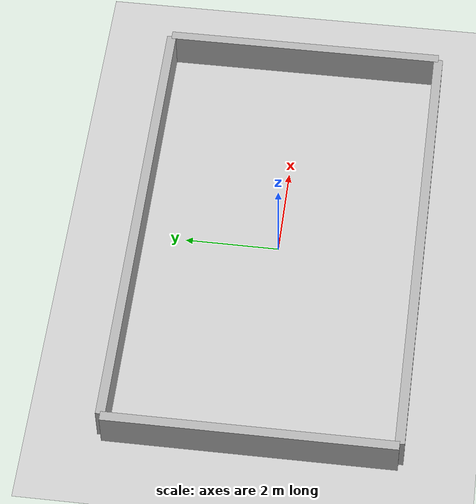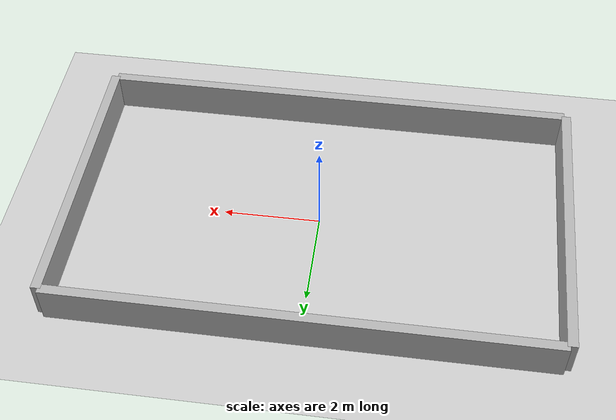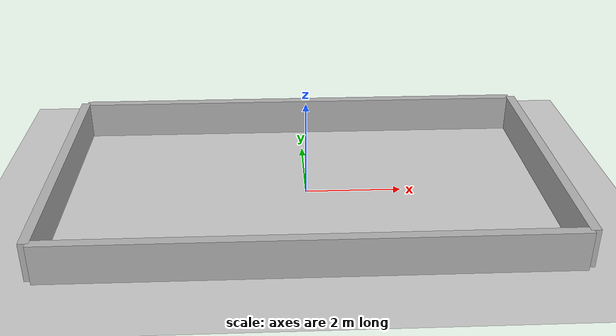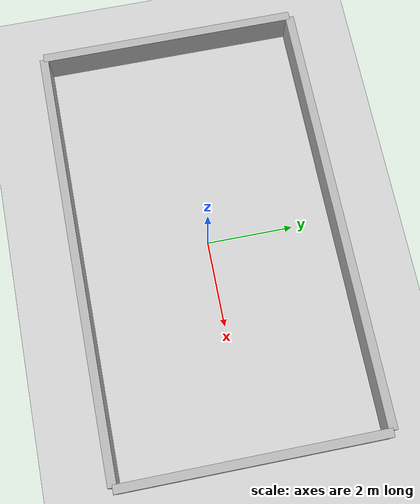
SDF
<sdf version="1.9">
 <world name="empty">
  <physics name="1ms" type="ignored">
   <max_step_size>0.001</max_step_size>
   <real_time_factor>1</real_time_factor>
   <real_time_update_rate>1000</real_time_update_rate>
  </physics>
  <plugin name="gz::sim::systems::Physics" filename="ignition-gazebo-physics-system"/>
  <plugin name="gz::sim::systems::UserCommands" filename="ignition-gazebo-user-commands-system"/>
  <plugin name="gz::sim::systems::SceneBroadcaster" filename="ignition-gazebo-scene-broadcaster-system"/>
  <plugin name="gz::sim::systems::Contact" filename="ignition-gazebo-contact-system"/>
  <gravity>0 0 -9.8</gravity>
  <magnetic_field>6e-06 2.3e-05 -4.2e-05</magnetic_field>
  <atmosphere type="adiabatic"/>
  <scene><ambient>0.4 0.4 0.4 1</ambient><background>0.7 0.7 0.7 1</background><shadows>true</shadows></scene>
  <model name="ground_plane">
   <static>true</static>
   <link name="link">
    <collision name="collision">
     <geometry><plane><normal>0 0 1</normal><size>100 100</size></plane></geometry>
    </collision>
    <visual name="visual">
     <geometry><plane><normal>0 0 1</normal><size>100 100</size></plane></geometry>
     <material>
      <ambient>0.8 0.8 0.8 1</ambient>
      <diffuse>0.8 0.8 0.8 1</diffuse>
      <specular>0.8 0.8 0.8 1</specular>
     </material>
    </visual>
    <inertial>
     <mass>1</mass>
     <inertia><ixx>1</ixx><ixy>0</ixy><ixz>0</ixz><iyy>1</iyy><iyz>0</iyz><izz>1</izz></inertia>
    </inertial>
   </link>
  </model>
  <model name="box">
   <pose>5.04085 -0 0.400085 0 0.000858 2e-06</pose>
   <link name="box_link">
    <inertial>
     <inertia><ixx>0.16666</ixx><ixy>0</ixy><ixz>0</ixz><iyy>0.16666</iyy><iyz>0</iyz><izz>0.16666</izz></inertia>
     <mass>1</mass>
    </inertial>
    <collision name="box_collision"><geometry><box><size>0.2 6 0.8</size></box></geometry></collision>
    <visual name="box_visual">
     <geometry><box><size>0.2 6 0.8</size></box></geometry>
     <material>
      <ambient>0.3 0.3 0.3 1</ambient>
      <diffuse>0.7 0.7 0.7 1</diffuse>
      <specular>1 1 1 1</specular>
     </material>
    </visual>
   </link>
   <static>false</static>
  </model>
  <model name="box_0">
   <pose>-6e-06 -3 0.4 -0 -0 -1e-06</pose>
   <link name="box_link">
    <inertial>
     <inertia><ixx>0.16666</ixx><ixy>0</ixy><ixz>0</ixz><iyy>0.16666</iyy><iyz>0</iyz><izz>0.16666</izz></inertia>
     <mass>1</mass>
    </inertial>
    <collision name="box_collision"><geometry><box><size>10 0.2 0.8</size></box></geometry></collision>
    <visual name="box_visual">
     <geometry><box><size>10 0.2 0.8</size></box></geometry>
     <material>
      <ambient>0.3 0.3 0.3 1</ambient>
      <diffuse>0.7 0.7 0.7 1</diffuse>
      <specular>1 1 1 1</specular>
     </material>
    </visual>
   </link>
   <static>false</static>
  </model>
  <model name="box_1">
   <pose>-5.04062 -0 0.400018 -0 -0.000187 1e-06</pose>
   <link name="box_link">
    <inertial>
     <inertia><ixx>0.16666</ixx><ixy>0</ixy><ixz>0</ixz><iyy>0.16666</iyy><iyz>0</iyz><izz>0.16666</izz></inertia>
     <mass>1</mass>
    </inertial>
    <collision name="box_collision"><geometry><box><size>0.2 6 0.8</size></box></geometry></collision>
    <visual name="box_visual">
     <geometry><box><size>0.2 6 0.8</size></box></geometry>
     <material>
      <ambient>0.3 0.3 0.3 1</ambient>
      <diffuse>0.7 0.7 0.7 1</diffuse>
      <specular>1 1 1 1</specular>
     </material>
    </visual>
   </link>
   <static>false</static>
  </model>
  <model name="box_2">
   <pose>-2.5e-05 2.99999 0.4 -1e-06 -0 -2e-06</pose>
   <link name="box_link">
    <inertial>
     <inertia><ixx>0.16666</ixx><ixy>0</ixy><ixz>0</ixz><iyy>0.16666</iyy><iyz>0</iyz><izz>0.16666</izz></inertia>
     <mass>1</mass>
    </inertial>
    <collision name="box_collision"><geometry><box><size>10 0.2 0.8</size></box></geometry></collision>
    <visual name="box_visual">
     <geometry><box><size>10 0.2 0.8</size></box></geometry>
     <material>
      <ambient>0.3 0.3 0.3 1</ambient>
      <diffuse>0.7 0.7 0.7 1</diffuse>
      <specular>1 1 1 1</specular>
     </material>
    </visual>
   </link>
   <static>false</static>
  </model>
  <light name="sun" type="directional">
   <pose>0 0 10 0 -0 0</pose>
   <intensity>1</intensity>
   <direction>-0.5 0.1 -0.9</direction>
   <diffuse>0.8 0.8 0.8 1</diffuse>
   <specular>0.2 0.2 0.2 1</specular>
   <attenuation>
    <range>1000</range>
    <linear>0.01</linear>
    <constant>0.90000000000000002</constant>
    <quadratic>0.001</quadratic>
   </attenuation>
   <spot><inner_angle>0</inner_angle><outer_angle>0</outer_angle><falloff>0</falloff></spot>
  </light>
  <plugin filename="ignition-gazebo-diff-drive-system" name="ignition::gazebo::systems::DiffDrive">
   <left_joint>left_former_joint</left_joint>
   <left_joint>left_rear_joint</left_joint>
   <right_joint>front_right_wheel_joint</right_joint>
   <right_joint>right_rear_joint</right_joint>
   <wheel_separation>0.66</wheel_separation>
   <wheel_radius>0.0415</wheel_radius>
   <odom_publish_frequency>10</odom_publish_frequency>
   <frame_id>odom</frame_id>
   <child_frame_id>base_footprint</child_frame_id>
   <topic>/cmd_vel</topic>
   <max_linear_acceleration>1</max_linear_acceleration>
   <min_linear_acceleration>-1</min_linear_acceleration>
   <max_angular_acceleration>2</max_angular_acceleration>
   <min_angular_acceleration>-2</min_angular_acceleration>
   <max_linear_velocity>0.5</max_linear_velocity>
   <min_linear_velocity>-0.5</min_linear_velocity>
   <max_angular_velocity>1</max_angular_velocity>
   <min_angular_velocity>-1</min_angular_velocity>
  </plugin>
 </world>
</sdf>
